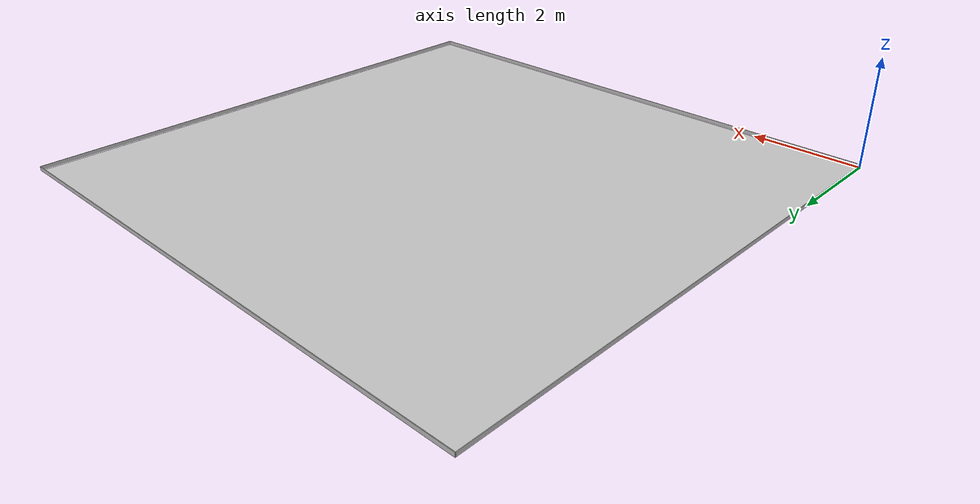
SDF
<?xml version='1.0'?>
<sdf version='1.6'>
  <model name='arena'>
    <static>1</static>

    <link name='ground'>
      <pose frame=''>5 5 0 0 0 0</pose>
      <collision name='collision'>
        <geometry>
          <plane>
            <normal>0 0 1</normal>
            <size>10 10</size>
          </plane>
        </geometry>
        <surface>
          <friction>
            <ode>
              <mu>100</mu>
              <mu2>50</mu2>
            </ode>
          </friction>
        </surface>
      </collision>
      <visual name='visual'>
        <cast_shadows>0</cast_shadows>
        <geometry>
          <plane>
            <normal>0 0 1</normal>
            <size>10 10</size>
          </plane>
        </geometry>
        <material name="orange"/>
      </visual>
    </link>

    <link name='wall_1'>
      <pose>5 -0.005 0.035 0 0 0</pose>
      <visual name='visual'>
        <geometry>
          <box>
            <size>10.005 0.01 0.07</size>
          </box>
        </geometry>
      </visual>
      <collision name='collision'>
        <geometry>
          <box>
            <size>10.005 0.01 0.07</size>
          </box>
        </geometry>
      </collision>
    </link>

    <link name='wall_2'>
      <pose>5 10.005 0.035 0 0 0</pose>
      <visual name='visual'>
        <geometry>
          <box>
            <size>10.005 0.01 0.07</size>
          </box>
        </geometry>
      </visual>
      <collision name='collision'>
        <geometry>
          <box>
            <size>10.005 0.01 0.07</size>
          </box>
        </geometry>
      </collision>
    </link>

    <link name='wall_3'>
      <pose>-0.005 5 0.035 0 0 1.5708</pose>
      <visual name='visual'>
        <geometry>
          <box>
            <size>10 0.01 0.07</size>
          </box>
        </geometry>
        </visual>
      <collision name='collision'>
        <geometry>
          <box>
            <size>10 0.01 0.07</size>
          </box>
        </geometry>
        </collision>
    </link>

    <link name='wall_4'>
      <pose>10.005 5 0.035 0 -0 1.5708</pose>
      <visual name='visual'>
        <geometry>
          <box>
            <size>10 0.01 0.07</size>
          </box>
        </geometry>
      </visual>
      <collision name='collision'>
        <geometry>
          <box>
            <size>10 0.01 0.07</size>
          </box>
        </geometry>
      </collision>
    </link>
  </model>
</sdf>
